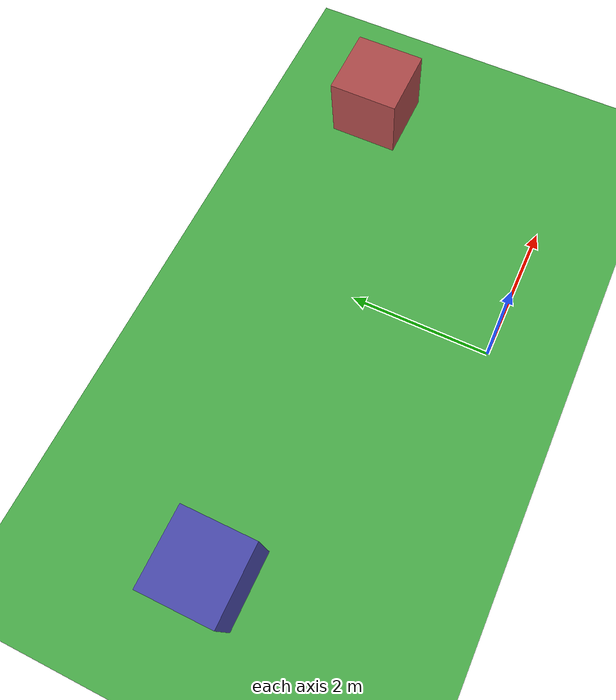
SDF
<?xml version="1.0"?>
<sdf version='1.8'>
  <world name="simple_trees_builtin">
    <!-- Basic world setup -->
    <plugin name='ignition::gazebo::systems::Physics' filename='ignition-gazebo-physics-system' />
    <plugin name='ignition::gazebo::systems::UserCommands' filename='ignition-gazebo-user-commands-system' />
    <plugin name='ignition::gazebo::systems::SceneBroadcaster' filename='ignition-gazebo-scene-broadcaster-system' />
    <plugin name='ignition::gazebo::systems::Contact' filename='ignition-gazebo-contact-system' />

    <!-- CRITICAL FIX: Load sensors plugin ONCE globally instead of per-robot -->
    <plugin name='ignition::gazebo::systems::Sensors' filename='ignition-gazebo-sensors-system'>
      <render_engine>ogre2</render_engine>
    </plugin>

    <!-- CRITICAL FIX: Load sensor-specific plugins globally -->
    <plugin name='ignition::gazebo::systems::Imu' filename='ignition-gazebo-imu-system' />
    <plugin name='ignition::gazebo::systems::NavSat' filename='ignition-gazebo-navsat-system' />

    <light name="sun" type="directional">
      <cast_shadows>1</cast_shadows>
      <pose>0 0 10 0 -0 0</pose>
      <diffuse>0.8 0.8 0.8 1</diffuse>
      <specular>0.2 0.2 0.2 1</specular>
      <attenuation>
        <range>1000</range>
        <constant>0.9</constant>
        <linear>0.01</linear>
        <quadratic>0.001</quadratic>
      </attenuation>
      <direction>-0.5 0.1 -0.9</direction>
    </light>

    <gravity>0 0 -9.81</gravity>
    <magnetic_field>6e-06 2.3e-05 -4.2e-05</magnetic_field>
    <atmosphere type="adiabatic"/>

    <physics name="default_physics" type="ignored">
      <max_step_size>0.01</max_step_size>
      <real_time_factor>1</real_time_factor>
      <real_time_update_rate>100</real_time_update_rate>
    </physics>

    <scene>
      <ambient>1.0 1.0 1.0</ambient>
      <background>0.8 0.8 0.8</background>
      <shadows>1</shadows>
    </scene>

    <!-- Initialise spherical coordinates -->
    <spherical_coordinates>
      <latitude_deg>0.0</latitude_deg>
      <longitude_deg>0.0</longitude_deg>
      <elevation>10.0</elevation>
      <heading_deg>0</heading_deg>
      <surface_model>EARTH_WGS84</surface_model>
    </spherical_coordinates>

    <!-- Ground plane -->
    <model name="ground_plane">
      <static>true</static>
      <link name="link">
        <collision name="collision">
          <geometry>
            <plane>
              <normal>0 0 1</normal>
              <size>100 100</size>
            </plane>
          </geometry>
        </collision>
        <visual name="visual">
          <geometry>
            <plane>
              <normal>0 0 1</normal>
              <size>100 100</size>
            </plane>
          </geometry>
          <material>
            <ambient>0.3 0.7 0.3 1</ambient>
            <diffuse>0.3 0.7 0.3 1</diffuse>
            <specular>0.01 0.01 0.01 1</specular>
          </material>
        </visual>
      </link>
    </model>

    <!-- Simple box obstacles -->
    <model name="box1">
      <pose>3 3 0.5 0 0 0</pose>
      <static>true</static>
      <link name="link">
        <collision name="collision">
          <geometry>
            <box>
              <size>1 1 1</size>
            </box>
          </geometry>
        </collision>
        <visual name="visual">
          <geometry>
            <box>
              <size>1 1 1</size>
            </box>
          </geometry>
          <material>
            <ambient>0.7 0.3 0.3 1</ambient>
            <diffuse>0.7 0.3 0.3 1</diffuse>
          </material>
        </visual>
      </link>
    </model>

    <model name="box2">
      <pose>-4 2 0.5 0 0 0</pose>
      <static>true</static>
      <link name="link">
        <collision name="collision">
          <geometry>
            <box>
              <size>1 1 1</size>
            </box>
          </geometry>
        </collision>
        <visual name="visual">
          <geometry>
            <box>
              <size>1 1 1</size>
            </box>
          </geometry>
          <material>
            <ambient>0.3 0.3 0.7 1</ambient>
            <diffuse>0.3 0.3 0.7 1</diffuse>
          </material>
        </visual>
      </link>
    </model>

  </world>
</sdf>
